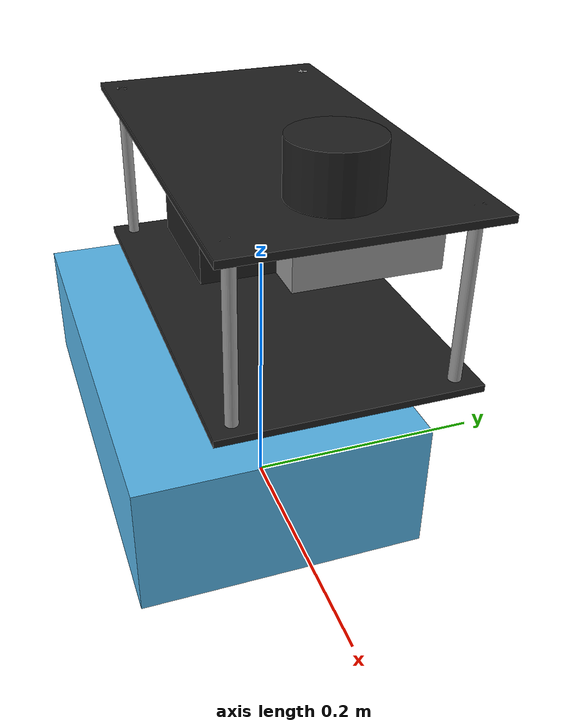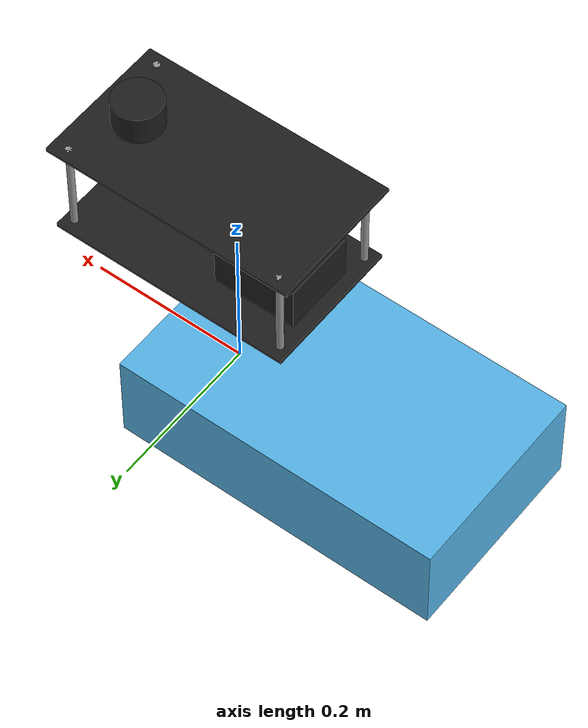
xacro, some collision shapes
<?xml version="1.0" ?>
<robot name="2WD_rover" xmlns:xacro="http://ros.org/wiki/xacro">
  <xacro:include filename="$(find rr_openrover_description)/urdf/common_properties.xacro"/>

  <link name="base_footprint"/>

  <joint name="base_joint" type="fixed">
    <parent link="base_footprint"/>
    <child link="base_link"/>
    <origin xyz="0 0 0" rpy="0 0 0"/>
  </joint>
  <link name="base_link">
    <visual>
      <origin xyz="0 0 0.182" rpy="0 0 1.57"/>
      <geometry>
        <mesh filename="package://rr_openrover_description/meshes/4WD_OpenRover.stl" scale="1 1 1"/>
      </geometry>
      <material name="dark"/>
    </visual>
    <collision>
      <origin xyz="-0.142 0 0" rpy="0 0 0"/>
      <geometry>
        <box size="0.42 0.25 0.12"/>
      </geometry>
    </collision>
    <inertial>
      <origin xyz="-0.142 0 0" rpy="0 0 0" />
      <mass value="7.5" />
      <inertia ixx="4.806e-2"
               ixy="0.0" iyy="1.193e-1"
               ixz="0.0" iyz="0.0" izz="1.493e-1" />
    </inertial>
  </link>

  <joint name="bottom_plate_link_joint" type="fixed">
    <parent link="base_link"/>
    <child link="bottom_plate_link"/>
    <origin xyz="0.025 0 0.185" rpy="0 0 0"/>
  </joint>
  <link name="bottom_plate_link">
    <visual>
      <origin xyz="0 0 0" rpy="0 0 0"/>
      <geometry>
        <box size="0.305 0.178 0.005"/>
      </geometry>
      <material name="light_black"/>
    </visual>
    <inertial>
      <origin xyz="0 0 0" />
      <mass value="0.65" />
      <inertia ixx="3.496e-3"
               ixy="0.0" iyy="7.864e-3"
               ixz="0.0" iyz="0.0" izz="1.136e-2" />
    </inertial>
  </link>

  <joint name="xavier_link_joint" type="fixed">
    <parent link="bottom_plate_link"/>
    <child link="xavier_link"/>
    <origin xyz="-0.0832 0 0.0275" rpy="0 0 0"/>
  </joint>
  <link name="xavier_link">
    <visual>
      <origin xyz="0 0 0" rpy="0 0 0"/>
      <geometry>
        <box size="0.105 0.092 0.065"/>
      </geometry>
      <material name="light_black"/>
    </visual>
    <inertial>
      <origin xyz="0 0 0" />
      <mass value="0.64" />
      <inertia ixx="8.634e-4"
               ixy="0.0" iyy="7.905e-4"
               ixz="0.0" iyz="0.0" izz="1.387e-3" />
    </inertial>
  </link>

  <joint name="top_plate_link_joint" type="fixed">
    <parent link="bottom_plate_link"/>
    <child link="top_plate_link"/>
    <origin xyz="0 0 0.12" rpy="0 0 0"/>
  </joint>
  <link name="top_plate_link">
    <visual>
      <origin xyz="0 0 0" rpy="0 0 0"/>
      <geometry>
        <box size="0.32 0.175 0.005"/>
      </geometry>
      <material name="light_black"/>
    </visual>
    <inertial>
      <origin xyz="0 0 0" />
      <mass value="0.65" />
      <inertia ixx="3.496e-3"
               ixy="0.0" iyy="7.864e-3"
               ixz="0.0" iyz="0.0" izz="1.136e-2" />
    </inertial>
  </link>

  <joint name="realsense_link_joint" type="fixed">
    <parent link="top_plate_link"/>
    <child link="realsense_link"/>
    <origin xyz="0.145 0 -0.0125" rpy="0 0 0"/>
  </joint>
  <link name="realsense_link">
    <visual>
      <origin xyz="0 0 0" rpy="0 0 0"/>
      <geometry>
        <box size="0.025 0.089 0.025"/>
      </geometry>
      <material name="grey"/>
    </visual>
  </link>

  <joint name="lidar_link_joint" type="fixed">
    <parent link="top_plate_link"/>
    <child link="lidar_link"/>
    <origin xyz="0.105 0 0.02" rpy="0 0 0"/>
  </joint>
  <link name="lidar_link">
    <visual>
      <origin xyz="0 0 0" rpy="0 0 0"/>
      <geometry>
        <cylinder length="0.04" radius="0.03"/>
      </geometry>
      <material name="light_black"/>
    </visual>
    <inertial>
      <origin xyz="0 0 0" />
      <mass value="0.220" />
      <inertia ixx="1.214e-4"
               ixy="0.0" iyy="1.214e-4"
               ixz="0.0" iyz="0.0" izz="1.597e-4" />
    </inertial>
  </link>

  <joint name="standoff_fl_joint" type="fixed">
    <parent link="bottom_plate_link"/>
    <child link="standoff_fl_link"/>
    <origin xyz="0.14 -0.074 0.0025" rpy="0 0 0"/>
  </joint>
  <link name="standoff_fl_link">
    <visual>
      <origin xyz="0 0 0.06" rpy="0 0 0"/>
      <geometry>
        <cylinder length="0.12" radius="0.0043"/>
      </geometry>
      <material name="grey"/>
    </visual>
  </link>
  <joint name="standoff_fr_link_joint" type="fixed">
    <parent link="bottom_plate_link"/>
    <child link="standoff_fr_link"/>
    <origin xyz="0.14 0.074 0.0025" rpy="0 0 0"/>
  </joint>
  <link name="standoff_fr_link">
    <visual>
      <origin xyz="0 0 0.06" rpy="0 0 0"/>
      <geometry>
        <cylinder length="0.12" radius="0.0043"/>
      </geometry>
      <material name="grey"/>
    </visual>
  </link>
  <joint name="standoff_bl_link_joint" type="fixed">
    <parent link="bottom_plate_link"/>
    <child link="standoff_bl_link"/>
    <origin xyz="-0.14 -0.074 0.0025" rpy="0 0 0"/>
  </joint>
  <link name="standoff_bl_link">
    <visual>
      <origin xyz="0 0 0.06" rpy="0 0 0"/>
      <geometry>
        <cylinder length="0.12" radius="0.0043"/>
      </geometry>
      <material name="grey"/>
    </visual>
  </link>
  <joint name="standoff_br_link_joint" type="fixed">
    <parent link="bottom_plate_link"/>
    <child link="standoff_br_link"/>
    <origin xyz="-0.14 0.074 0.0025" rpy="0 0 0"/>
  </joint>
  <link name="standoff_br_link">
    <visual>
      <origin xyz="0 0 0.06" rpy="0 0 0"/>
      <geometry>
        <cylinder length="0.12" radius="0.0043"/>
      </geometry>
      <material name="grey"/>
    </visual>
  </link>

</robot>
